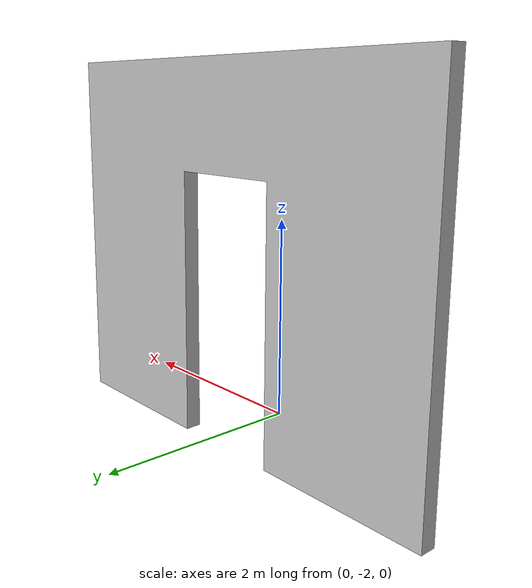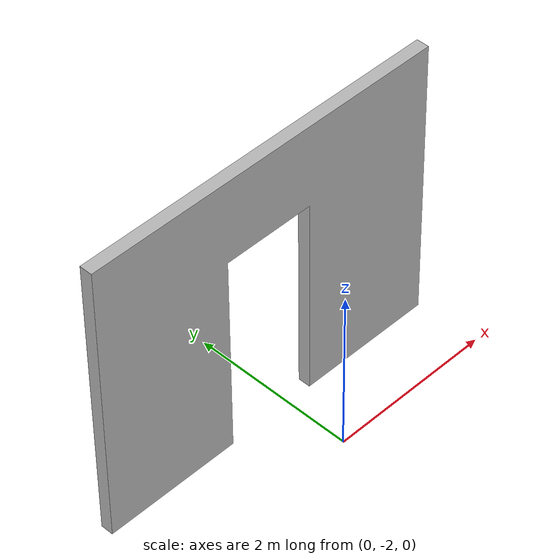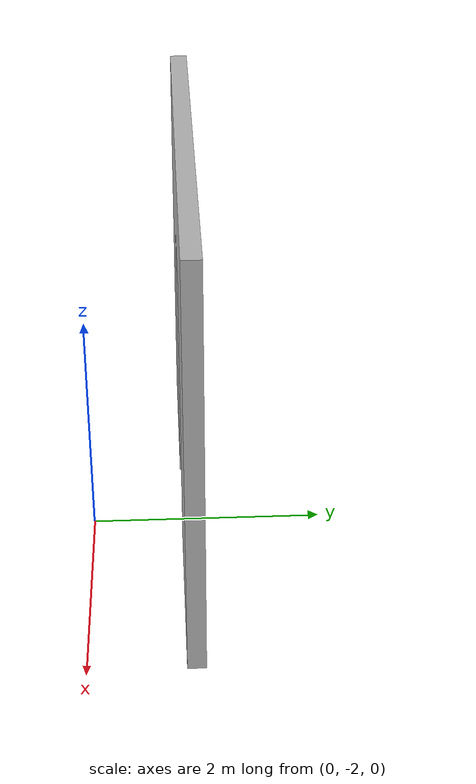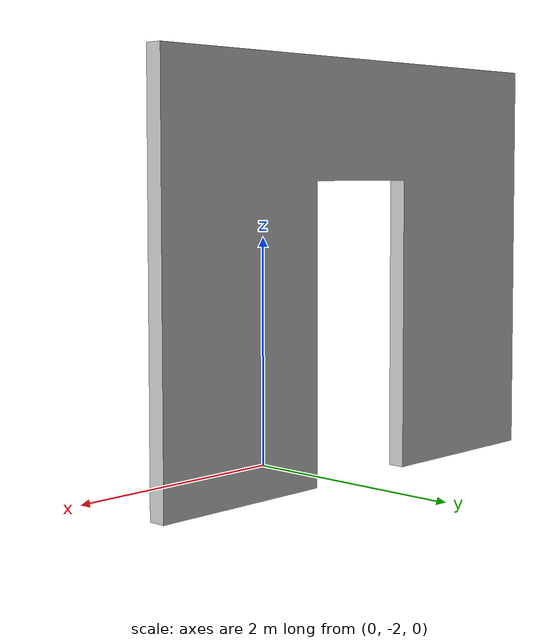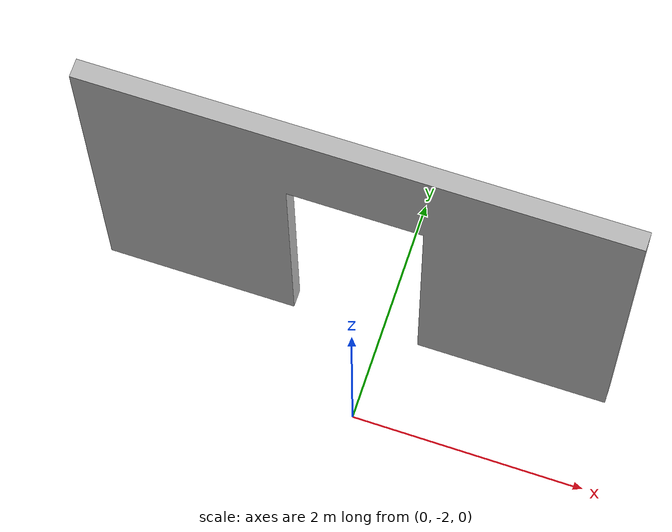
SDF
<?xml version="1.0"?>
<sdf version="1.5">
    <model name="0_wall_4_no_porog">
        <static>true</static>
        <link name="link">
            <collision name="collision1">
                <pose>0 0 0 0 0 0</pose>
                <geometry>
                    <mesh>
                        <uri>meshes/0_wall_4_no_porog.dae</uri>
                    </mesh>
                </geometry>
            </collision>
            <visual name="visual1">
              <pose>0 0 0 0 0 0</pose>
              <geometry>
              <mesh>
                 <uri>meshes/0_wall_4_no_porog.dae</uri>
              </mesh>
              </geometry>
             </visual>
        </link>
    </model>
</sdf>
